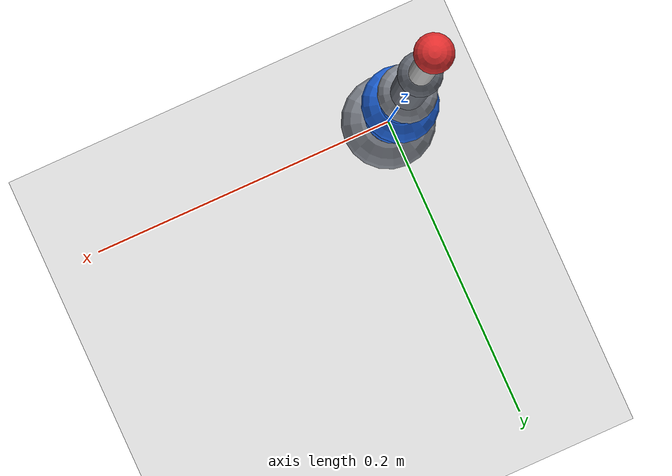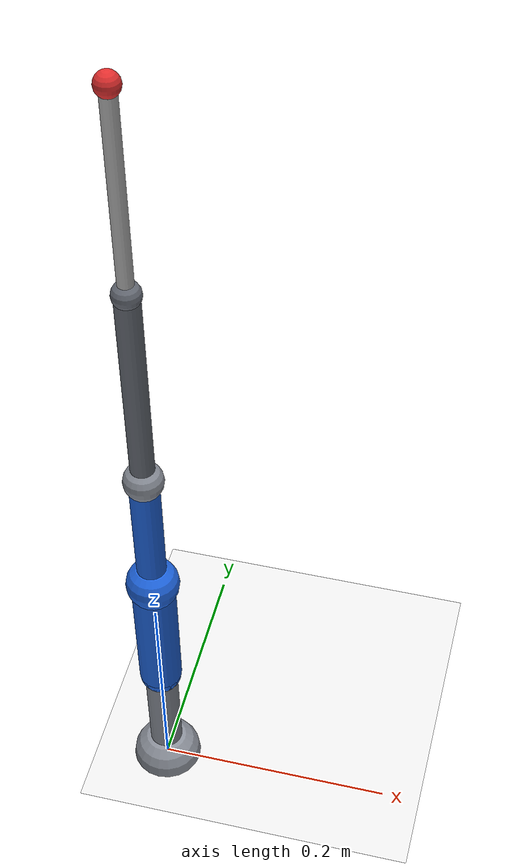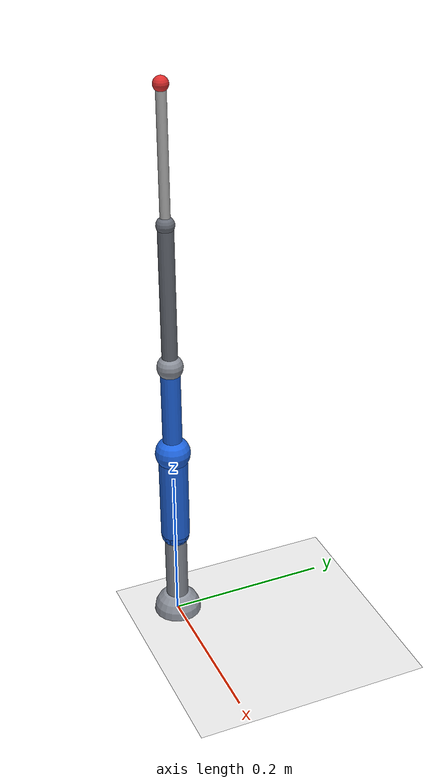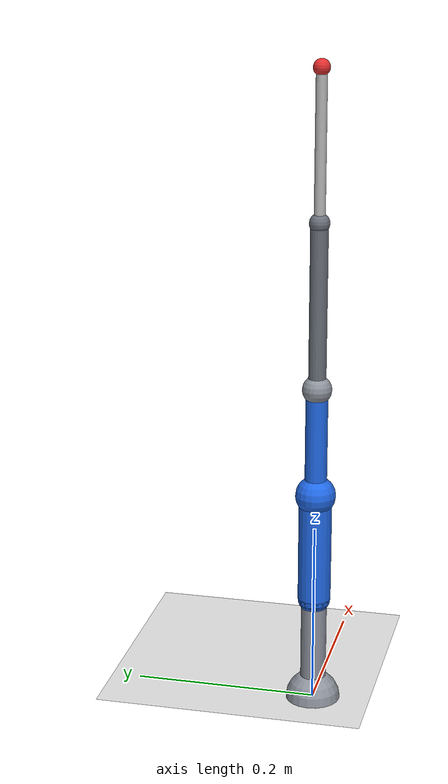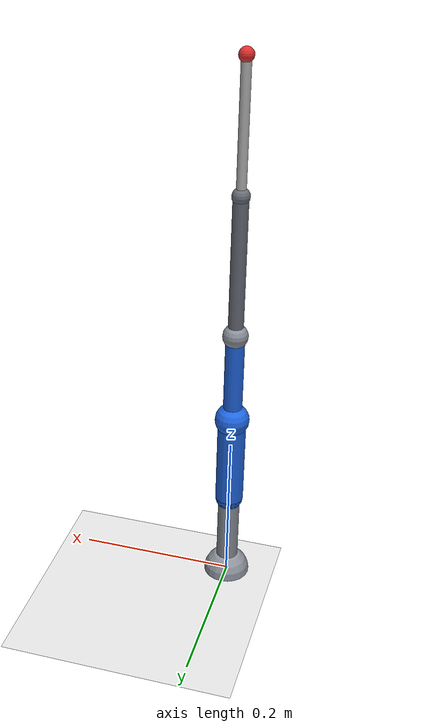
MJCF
<mujoco model="rcm_final_force">
  <compiler angle="degree" autolimits="true"/>
  <option timestep="0.002" gravity="0 0 -9.81"/>
  <statistic center="0 0 0.28" extent="0.80"/>

  <visual>
    <headlight ambient="0.55 0.55 0.55" diffuse="0.35 0.35 0.35" specular="0.15 0.15 0.15"/>
    <rgba haze="0.96 0.97 0.98 1"/>
  </visual>

  <asset>
    <material name="robot_blue" rgba="0.13 0.42 0.92 1"/>
    <material name="joint_gray" rgba="0.56 0.58 0.62 1"/>
    <material name="sleeve_gray" rgba="0.42 0.44 0.48 1"/>
    <material name="tool_gray" rgba="0.74 0.74 0.74 1"/>
    <material name="tip_red" rgba="0.88 0.18 0.18 1"/>
    <texture name="grid" type="2d" builtin="checker" rgb1="0.88 0.88 0.88" rgb2="0.94 0.94 0.94" width="256" height="256"/>
    <material name="floor_grid" texture="grid" texrepeat="6 6" reflectance="0.05"/>
  </asset>

  <default>
    <joint limited="true" damping="0.12" armature="0.01"/>
    <geom condim="3" contype="1" conaffinity="1"/>
    <motor ctrllimited="true"/>
  </default>

  <worldbody>
    <light pos="0 0 1.6" dir="0 0 -1"/>
    <geom name="floor" type="plane" pos="0 0 0" size="1.2 1.2 0.1" material="floor_grid"/>

    <body name="arm_root" pos="0 0 0">
      <geom name="base_sphere" type="sphere" pos="0 0 0" size="0.03" mass="0.35" material="joint_gray"/>
      <joint name="q1" type="hinge" axis="0 0 1" range="-180 180"/>

      <geom name="pedestal" type="cylinder" pos="0 0 0.06" size="0.014 0.06" mass="0.20" material="joint_gray"/>

      <body name="shoulder" pos="0 0 0.12">
        <geom name="shoulder_cap" type="sphere" pos="0 0 0" size="0.018" mass="0.04" material="robot_blue"/>
        <joint name="q2" type="hinge" axis="1 0 0" range="-110 110"/>
        <geom name="upper_arm" type="capsule" fromto="0 0 0 0 0 0.12" size="0.018" mass="0.45" material="robot_blue"/>

        <body name="elbow" pos="0 0 0.12">
          <geom name="elbow_cap" type="sphere" pos="0 0 0" size="0.022" mass="0.05" material="robot_blue"/>
          <joint name="q3" type="hinge" axis="1 0 0" range="-140 140"/>
          <geom name="forearm" type="capsule" fromto="0 0 0 0 0 0.12" size="0.012" mass="0.22" material="robot_blue"/>

          <body name="tool_local_body" pos="0 0 0.12" quat="0.5 -0.5 0.5 -0.5">
            <body name="tool_yaw_body" pos="0 0 0">
              <inertial pos="0 0 0" mass="0.001" diaginertia="1e-6 1e-6 1e-6"/>
              <joint name="tool_yaw" type="hinge" axis="0 0 1" range="-180 180" damping="0.20" frictionloss="0.15"/>

              <body name="tool_pitch_body" pos="0 0 0">
                <inertial pos="0 0 0" mass="0.001" diaginertia="1e-6 1e-6 1e-6"/>
                <joint name="tool_pitch" type="hinge" axis="-1 0 0" range="-90 90" damping="0.25" frictionloss="0.18"/>

                <body name="tool_sleeve_body" pos="0 0 0" euler="90 0 0">
                  <geom name="tool_ball_joint_shell" type="sphere" pos="0 0 0" size="0.016" mass="0.02" material="joint_gray"/>
                  <geom name="tool_sleeve_geom" type="capsule" fromto="0 0 0 0 0 0.18" size="0.0095" mass="0.10" material="sleeve_gray"/>
                  <geom name="tool_sleeve_front" type="sphere" pos="0 0 0.18" size="0.011" mass="0.01" material="sleeve_gray"/>

                  <body name="tool_slider" pos="0 0 0">
                    <joint name="tool_slide" type="slide" axis="0 0 1" range="0 0.15" damping="0.20"/>
                    <geom name="tool_inner" type="capsule" fromto="0 0 0 0 0 0.34" size="0.006" mass="0.12" material="tool_gray"/>
                    <site name="tool_tip" pos="0 0 0.34" size="0.009" rgba="0.88 0.18 0.18 1"/>
                  </body>
                </body>
              </body>
            </body>
          </body>
        </body>
      </body>
    </body>
  </worldbody>

  <actuator>
    <motor name="q1_torque" joint="q1" gear="1" ctrlrange="-20 20"/>
    <motor name="q2_torque" joint="q2" gear="1" ctrlrange="-20 20"/>
    <motor name="q3_torque" joint="q3" gear="1" ctrlrange="-15 15"/>
    <motor name="tool_yaw_torque" joint="tool_yaw" gear="1" ctrlrange="-6 6"/>
    <motor name="tool_pitch_torque" joint="tool_pitch" gear="1" ctrlrange="-6 6"/>
    <motor name="tool_slide_force" joint="tool_slide" gear="1" ctrlrange="-20 20"/>
  </actuator>

  <keyframe>
    <key name="home" qpos="0 -0.69813170 1.09955743 0 0 0.03"/>
  </keyframe>
</mujoco>
